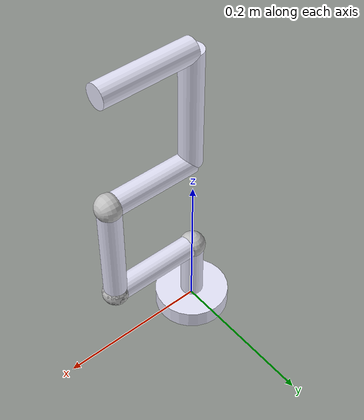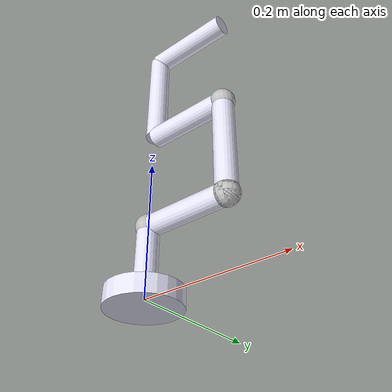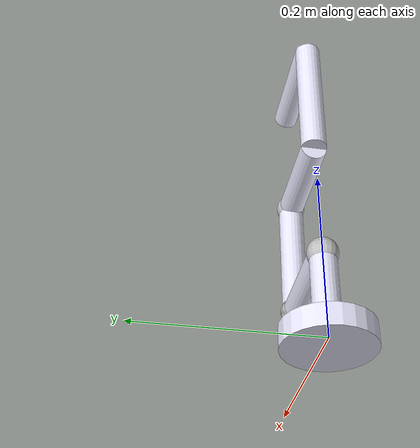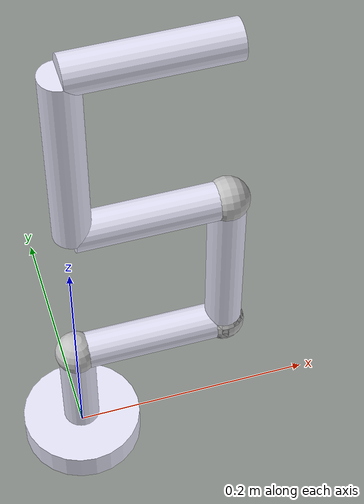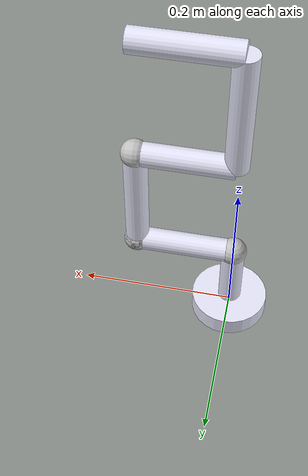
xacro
<?xml version="1.0"?>
<robot name="six_axis" xmlns:xacro="http://www.ros.org/wiki/xacro" xmlns:ros2_control="http://www.ros.org/wiki/ros2_control">

  <!-- Materials -->
  <material name="gray">
    <color rgba="0.75 0.75 0.75 1.0"/>
  </material>
  <material name="silver">
    <color rgba="0.9 0.9 0.98 1.0"/>
  </material>

  <!-- Base and Joints         -->

  <!-- Base -->
  <link name="base_link_arm"/>

  <joint name="j0" type="fixed">
    <parent link="base_link_arm"/>
    <child link="l0"/>
    <origin xyz="0 0 0" rpy="0 0 0"/>
  </joint>

  <link name="l0">
    <inertial>
      <origin xyz="0 0 0.0125"/>
      <mass value="0.4"/>
      <inertia ixx="0.000938" iyy="0.001424" izz="0.001766"
               ixy="0" ixz="0.000238" iyz="0"/>
    </inertial>
    <visual>
      <geometry><cylinder radius="0.05" length="0.025"/></geometry>
      <origin xyz="0 0 0"/>
      <material name="silver"/>
    </visual>
    <collision>
      <geometry><cylinder radius="0.05" length="0.025"/></geometry>
      <origin xyz="0 0 0"/>
    </collision>
  </link>

  <joint name="j1" type="revolute">
    <parent link="l0"/>
    <child link="l1"/>
    <origin xyz="0 0 0"/>
    <axis xyz="0 0 1"/>
    <limit lower="-6.283" upper="6.283" effort="2" velocity="0.8"/>
  </joint>

  <!-- Transmission for j1 -->
  <transmission name="trans_j1">
    <type>transmission_interface/SimpleTransmission</type>
    <joint name="j1">
      <hardwareInterface>hardware_interface/PositionJointInterface</hardwareInterface>
    </joint>
    <actuator name="actuator_j1">
      <hardwareInterface>hardware_interface/PositionJointInterface</hardwareInterface>
    </actuator>
  </transmission>

  <link name="l1">
    <inertial>
      <origin xyz="0 0 0.125"/>
      <mass value="0.2"/>
      <inertia ixx="0.0138" iyy="0.0139" izz="0.0035"
               ixy="1.03e-06" ixz="4.23e-05" iyz="0.0023"/>
    </inertial>
    <visual>
      <geometry><cylinder radius="0.015" length="0.1"/></geometry>
      <origin xyz="0 0 0.05"/>
      <material name="silver"/>
    </visual>
    <collision>
      <geometry><cylinder radius="0.015" length="0.1"/></geometry>
      <origin xyz="0 0 0.05"/>
    </collision>
    <visual>
      <geometry><sphere radius="0.0175"/></geometry>
      <origin xyz="0 0 0.1"/>
      <material name="gray"/>
    </visual>
  </link>

  <joint name="j_dummy_1_2" type="fixed">
    <parent link="l1"/>
    <child link="l2"/>
    <origin xyz="0 0 0.1"/>
  </joint>

  <link name="l2">
    <inertial>
      <origin xyz="0.125 0 0"/>
      <mass value="0.2"/>
      <inertia ixx="0.03" iyy="0.398" izz="0.348" ixy="0" ixz="0" iyz="0"/>
    </inertial>
    <visual>
      <geometry><cylinder radius="0.015" length="0.125"/></geometry>
      <origin xyz="0.0625 0 0" rpy="0 ${pi/2} 0"/>
      <material name="silver"/>
    </visual>
    <collision>
      <geometry><cylinder radius="0.015" length="0.125"/></geometry>
      <origin xyz="0.0625 0 0" rpy="0 ${pi/2} 0"/>
    </collision>
    <visual>
      <geometry><sphere radius="0.0175"/></geometry>
      <origin xyz="0.125 0 0"/>
      <material name="gray"/>
    </visual>
  </link>

  <joint name="j2" type="revolute">
    <parent link="l2"/>
    <child link="l3"/>
    <origin xyz="0.125 0 0" rpy="0 ${pi/2} 0"/>
    <axis xyz="0 0 1"/>
    <limit lower="-1.57" upper="1.57" effort="2" velocity="0.8"/>
  </joint>

  <!-- Transmission for j2 -->
  <transmission name="trans_j2">
    <type>transmission_interface/SimpleTransmission</type>
    <joint name="j2">
      <hardwareInterface>hardware_interface/PositionJointInterface</hardwareInterface>
    </joint>
    <actuator name="actuator_j2">
      <hardwareInterface>hardware_interface/PositionJointInterface</hardwareInterface>
    </actuator>
  </transmission>

  <link name="l3">
    <inertial>
      <origin xyz="-0.075 0 0"/>
      <mass value="0.6"/>
      <inertia ixx="0.002" ixy="0" ixz="0" iyy="0.002" iyz="0" izz="0.002"/>
    </inertial>
    <visual>
      <geometry><cylinder radius="0.015" length="0.15"/></geometry>
      <origin xyz="-0.075 0 0" rpy="0 ${pi/2} 0"/>
      <material name="silver"/>
    </visual>
    <collision>
      <geometry><cylinder radius="0.015" length="0.15"/></geometry>
      <origin xyz="-0.075 0 0" rpy="0 ${pi/2} 0"/>
    </collision>
    <visual>
      <geometry><sphere radius="0.0175"/></geometry>
      <origin xyz="0 0 0"/>
      <material name="gray"/>
    </visual>
  </link>

  <joint name="j3" type="revolute">
    <parent link="l3"/>
    <child link="l4"/>
    <origin xyz="-0.15 0 0"/>
    <axis xyz="0 0 1"/>
    <limit lower="-1.57" upper="1.57" effort="2" velocity="0.8"/>
  </joint>

  <!-- Transmission for j3 -->
  <transmission name="trans_j3">
    <type>transmission_interface/SimpleTransmission</type>
    <joint name="j3">
      <hardwareInterface>hardware_interface/PositionJointInterface</hardwareInterface>
    </joint>
    <actuator name="actuator_j3">
      <hardwareInterface>hardware_interface/PositionJointInterface</hardwareInterface>
    </actuator>
  </transmission>

  <link name="l4">
    <inertial>
      <origin xyz="0 0 -0.06"/>
      <mass value="0.2"/>
      <inertia ixx="0.002" ixy="0" ixz="0" iyy="0.002" iyz="0" izz="0.002"/>
    </inertial>
    <visual>
      <geometry><cylinder radius="0.015" length="0.12"/></geometry>
      <origin xyz="0 0 -0.06"/>
      <material name="silver"/>
    </visual>
    <collision>
      <geometry><cylinder radius="0.015" length="0.12"/></geometry>
      <origin xyz="0 0 -0.06"/>
    </collision>
    <visual>
      <geometry><sphere radius="0.0175"/></geometry>
      <origin xyz="0 0 0"/>
      <material name="gray"/>
    </visual>
  </link>

  <joint name="j_dummy" type="fixed">
    <parent link="l4"/>
    <child link="l5"/>
    <origin xyz="0 0 -0.12"/>
  </joint>

  <link name="l5">
    <inertial>
      <origin xyz="-0.08 0 0"/>
      <mass value="0.6"/>
      <inertia ixx="0.002" ixy="0" ixz="0" iyy="0.002" iyz="0" izz="0.002"/>
    </inertial>
    <visual>
      <geometry><cylinder radius="0.015" length="0.16"/></geometry>
      <origin xyz="-0.08 0 0" rpy="0 ${pi/2} 0"/>
      <material name="silver"/>
    </visual>
    <collision>
      <geometry><cylinder radius="0.015" length="0.16"/></geometry>
      <origin xyz="-0.08 0 0" rpy="0 ${pi/2} 0"/>
    </collision>
  </link>

  <joint name="j4" type="revolute">
    <parent link="l5"/>
    <child link="l6"/>
    <origin xyz="-0.16 0 0"/>
    <axis xyz="0 0 1"/>
    <limit lower="-1.57" upper="1.57" effort="2" velocity="0.8"/>
  </joint>

  <!-- Transmission for j4 -->
  <transmission name="trans_j4">
    <type>transmission_interface/SimpleTransmission</type>
    <joint name="j4">
      <hardwareInterface>hardware_interface/PositionJointInterface</hardwareInterface>
    </joint>
    <actuator name="actuator_j4">
      <hardwareInterface>hardware_interface/PositionJointInterface</hardwareInterface>
    </actuator>
  </transmission>

  <link name="l6">
    <inertial>
      <origin xyz="0 0 0.0625"/>
      <mass value="0.2"/>
      <inertia ixx="0.002" ixy="0" ixz="0" iyy="0.002" iyz="0" izz="0.002"/>
    </inertial>
    <visual>
      <geometry><cylinder radius="0.015" length="0.125"/></geometry>
      <origin xyz="0 0 0.0625"/>
      <material name="silver"/>
    </visual>
    <collision>
      <geometry><cylinder radius="0.015" length="0.125"/></geometry>
      <origin xyz="0 0 0.0625"/>
    </collision>
  </link>

  <!-- Transmission for j6 -->
  <transmission name="trans_j6">
    <type>transmission_interface/SimpleTransmission</type>
    <joint name="j6">
      <hardwareInterface>hardware_interface/PositionJointInterface</hardwareInterface>
    </joint>
    <actuator name="actuator_j6">
      <hardwareInterface>hardware_interface/PositionJointInterface</hardwareInterface>
    </actuator>
  </transmission>

  <!-- Gazebo plugin -->
  <gazebo>
    <plugin name="gazebo_ros_control" filename="libgazebo_ros_control.so"/>
  </gazebo>

</robot>
